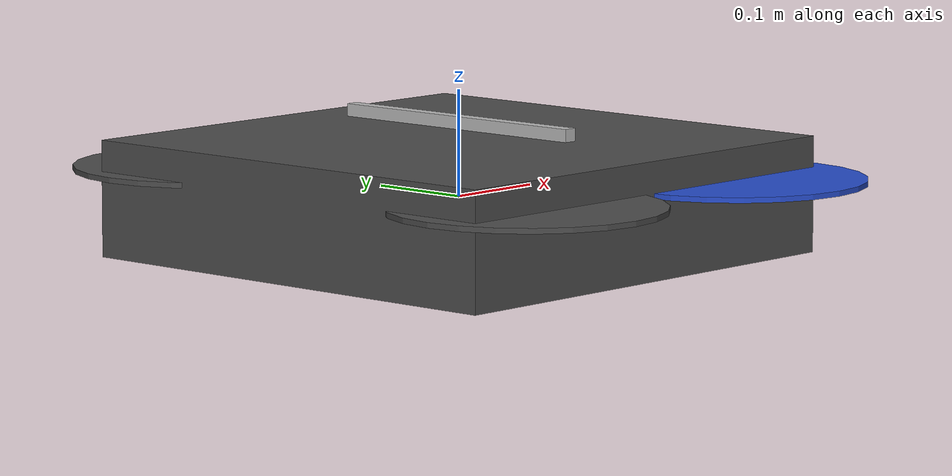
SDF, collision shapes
<sdf version='1.5'>
  <model name='iris_kinect'>

    <include>
      <uri>model://iris</uri>
    </include>

    <include>
      <uri>model://kinect</uri>
      <pose>0 0.0 0.07 0 0 0</pose>
    </include>
    <joint name="kinect_joint" type="revolute">
      <child>kinect::link</child>
      <parent>iris::base_link</parent>
      <axis>
        <xyz>0 0 1</xyz>
        <limit>
          <upper>0</upper>
          <lower>0</lower>
        </limit>
      </axis>
    </joint>

  </model>
</sdf>
